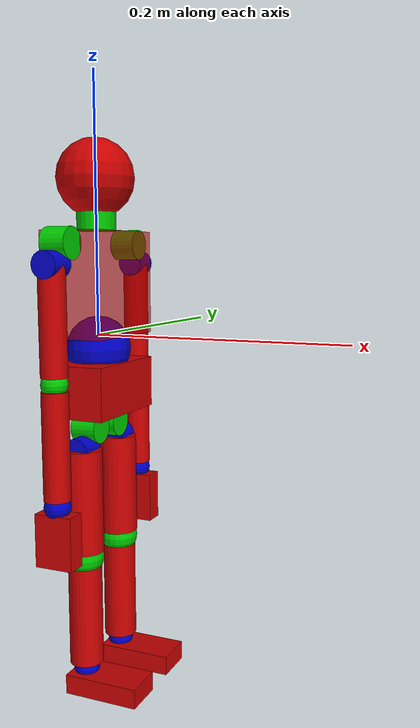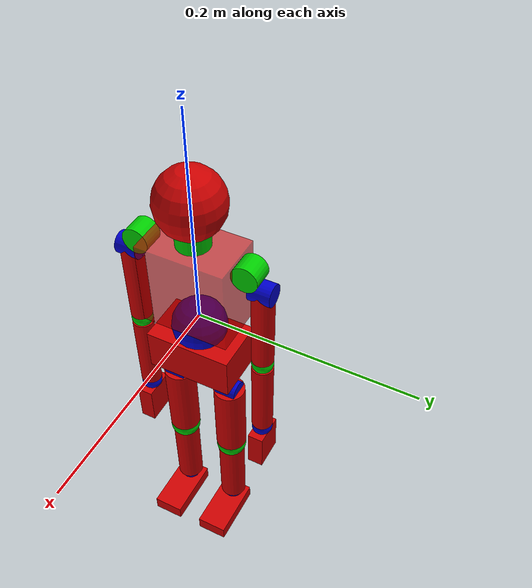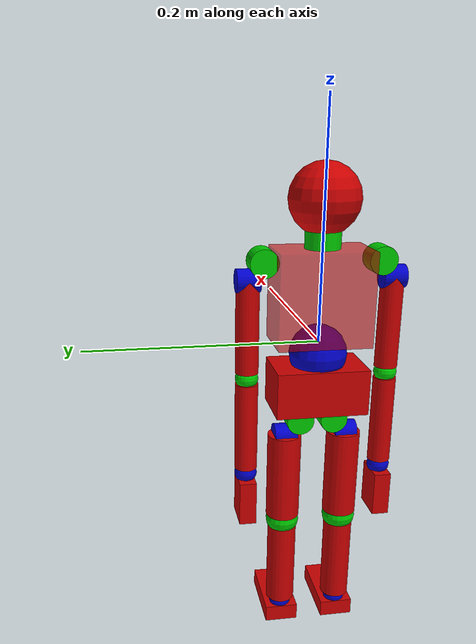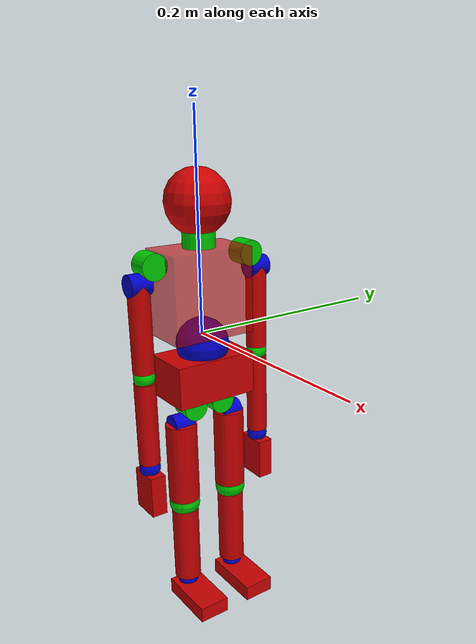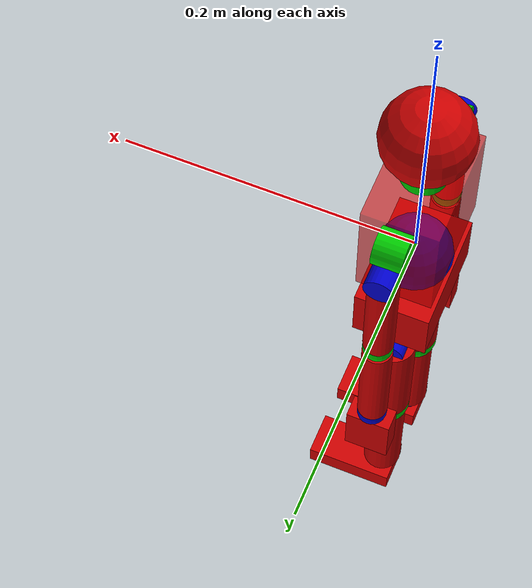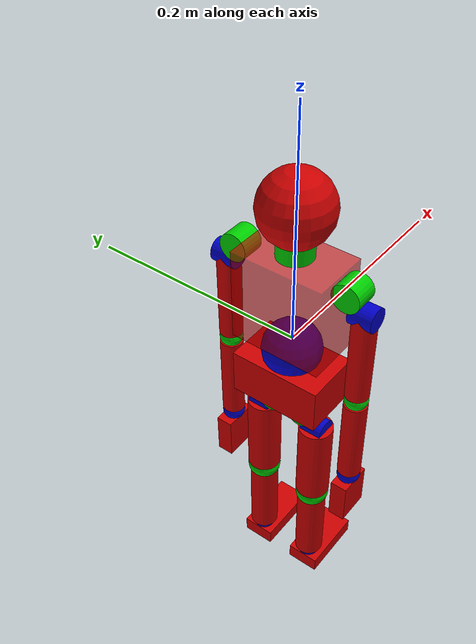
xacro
<?xml version="1.0"?>
<robot xmlns:xacro="http://www.ros.org/wiki/xacro" name="humanbot">

    <!-- define materials -->

    <xacro:macro name="material_visual_red" params="">
        <material name="red">
            <color rgba="0.8 0 0 1"/>
        </material>
    </xacro:macro>

    <xacro:macro name="material_visual_torso_red" params="">
        <material name="torso_red">
            <color rgba="0.8 0 0 0.6"/>
        </material>
    </xacro:macro>

    <xacro:macro name="material_visual_green" params="">
        <material name="green">
            <color rgba="0 0.8 0 1"/>
        </material>
    </xacro:macro>

    <xacro:macro name="material_visual_blue" params="">
        <material name="blue">
            <color rgba="0 0 0.8 1"/>
        </material>
    </xacro:macro>

    <xacro:macro name="material_visual_grey" params="">
        <material name="grey">
            <color rgba="0.7 0.7 0.7 1"/>
        </material>
    </xacro:macro>

    <!-- define properties -->

    <xacro:property name="gazebo_kp" value="1000.0"/>
    <xacro:property name="gazebo_kd" value="1000.0"/>
    <xacro:property name="gazebo_mu1" value="10.0"/>
    <xacro:property name="gazebo_mu2" value="10.0"/>

    <!-- define inertia calculation -->

    <xacro:macro name="cylinder_inertia" params="mass r h">
        <inertia ixx="${(mass / 12.0) * (3*r*r + h*h)}" ixy="0" ixz="0"
                 iyy="${(mass / 12.0) * (3*r*r + h*h)}" iyz="0"
                 izz="${(mass*r*r) / 2.0}" />
    </xacro:macro>

    <xacro:macro name="box_inertia" params="mass x y z">
        <inertia ixx="${mass * (y*y + z*z) / 12.0}" ixy="0" ixz="0"
                 iyy="${mass * (x*x + z*z) / 12.0}" iyz="0"
                 izz="${mass * (x*x + y*y) / 12.0}" />
    </xacro:macro>

    <xacro:macro name="sphere_inertia" params="mass r">
        <inertia ixx="${(2 * mass * r * r / 5.0)}" ixy="0" ixz="0"
                 iyy="${(2 * mass * r * r / 5.0)}" iyz="0"
                 izz="${(2 * mass * r * r / 5.0)}" />
    </xacro:macro>

    <!-- define torso -->

    <xacro:macro name="torso_part" params="">

        <!-- define base_link -->

        <link name="base_link">

            <collision>
                <origin rpy="0 0 0" xyz="0 0 0.005"/>
                <geometry>
                    <box size="0.01 0.01 0.01"/>
                </geometry>
            </collision>

            <visual>
                <origin rpy="0 0 0" xyz="0 0 0.005"/>
                <geometry>
                    <box size="0.01 0.01 0.01"/>
                </geometry>
                <xacro:material_visual_grey />
            </visual>

        </link>

        <!-- define torso_link -->

        <link name="torso_link">

            <inertial>
                <origin rpy="0 0 0" xyz="0 0 0.04"/>
                <mass value="0.04"/>
                <xacro:box_inertia mass="0.04" x="0.05" y="0.08" z="0.08"/>
            </inertial>

            <collision>
                <origin rpy="0 0 0" xyz="0 0 0.04"/>
                <geometry>
                    <box size="0.05 0.08 0.08"/>
                </geometry>
            </collision>

            <visual>
                <origin rpy="0 0 0" xyz="0 0 0.04"/>
                <geometry>
                    <box size="0.05 0.08 0.08"/>
                </geometry>
                <xacro:material_visual_torso_red />
            </visual>

        </link>

        <gazebo reference="torso_link">
            <mu1>${gazebo_mu1}</mu1>
            <mu2>${gazebo_mu2}</mu2>
            <material>Gazebo/Red</material>
        </gazebo>

        <!-- define base_torso_joint -->

        <joint name="base_torso_joint" type="fixed">

            <parent link="base_link"/>
            <child link="torso_link"/>
            <origin xyz="0 0 0" rpy="0 0 0"/>

        </joint>

        <!-- define neck_link -->

        <link name="neck_link">

            <inertial>
                <origin rpy="0 0 0" xyz="0 0 0.0075"/>
                <mass value="0.001"/>
                <xacro:cylinder_inertia mass="0.001" r="0.015" h="0.015"/>
            </inertial>

            <collision>
                <origin rpy="0 0 0" xyz="0 0 0.0075"/>
                <geometry>
                    <cylinder length="0.015" radius="0.015"/>
                </geometry>
            </collision>

            <visual>
                <origin rpy="0 0 0" xyz="0 0 0.0075"/>
                <geometry>
                    <cylinder length="0.015" radius="0.015"/>
                </geometry>
                <xacro:material_visual_green />
            </visual>

        </link>

        <gazebo reference="neck_link">
            <kp>${gazebo_kp}</kp>
            <kd>${gazebo_kd}</kd>
            <mu1>${gazebo_mu1}</mu1>
            <mu2>${gazebo_mu2}</mu2>
            <material>Gazebo/Green</material>
        </gazebo>

        <!-- define torso_neck_joint -->

        <joint name="torso_neck_joint" type="revolute">

            <parent link="torso_link"/>
            <child link="neck_link"/>
            <origin xyz="0 0 0.08" rpy="0 0 0"/>
            <limit lower="-1.5" upper="1.5" effort="1.0" velocity="0.005"/>
            <axis xyz="0 0 1"/>

        </joint>

        <!-- define head_link -->

        <link name="head_link">

            <inertial>
                <origin rpy="0 0 0" xyz="0 0 0"/>
                <mass value="0.01"/>
                <xacro:sphere_inertia mass="0.01" r="0.03"/>
            </inertial>

            <collision>
                <origin rpy="0 0 0" xyz="0 0 0"/>
                <geometry>
                    <sphere radius="0.03"/>
                </geometry>
            </collision>

            <visual>
                <origin rpy="0 0 0" xyz="0 0 0"/>
                <geometry>
                    <sphere radius="0.03"/>
                </geometry>
                <xacro:material_visual_red />
            </visual>

        </link>

        <gazebo reference="head_link">
            <kp>${gazebo_kp}</kp>
            <kd>${gazebo_kd}</kd>
            <mu1>${gazebo_mu1}</mu1>
            <mu2>${gazebo_mu2}</mu2>
            <material>Gazebo/Red</material>
        </gazebo>

        <!-- define neck_head_joint -->

        <joint name="neck_head_joint" type="fixed">

            <parent link="neck_link"/>
            <child link="head_link"/>
            <origin xyz="0 0 0.04" rpy="0 0 0"/>

        </joint>

        <!-- define waist link -->

        <link name="waist_link">

            <inertial>
                <origin rpy="0 0 0" xyz="0 0 0"/>
                <mass value="0.01"/>
                <xacro:sphere_inertia mass="0.01" r="0.025"/>
            </inertial>

            <collision>
                <origin rpy="0 0 0" xyz="0 0 0"/>
                <geometry>
                    <sphere radius="0.025"/>
                </geometry>
            </collision>

            <visual>
                <origin rpy="0 0 0" xyz="0 0 0"/>
                <geometry>
                    <sphere radius="0.025"/>
                </geometry>
                <xacro:material_visual_blue />
            </visual>

        </link>

        <gazebo reference="waist_link">
            <kp>${gazebo_kp}</kp>
            <kd>${gazebo_kd}</kd>
            <mu1>${gazebo_mu1}</mu1>
            <mu2>${gazebo_mu2}</mu2>
            <material>Gazebo/Blue</material>
        </gazebo>

        <!-- define torso_waist_joint -->

        <joint name="torso_waist_joint" type="revolute">

            <parent link="torso_link"/>
            <child link="waist_link"/>
            <origin xyz="0 0 -0.01" rpy="0 0 0"/>
            <limit lower="-1.3" upper="1.3" effort="1.0" velocity="0.005"/>
            <axis xyz="0 0 1"/>

        </joint>

        <!-- define hip_link -->

        <link name="hip_link">

            <inertial>
                <origin rpy="0 0 0" xyz="0 0 -0.03"/>
                <mass value="0.02"/>
                <xacro:box_inertia mass="0.02" x="0.05" y="0.08" z="0.04"/>
            </inertial>

            <collision>
                <origin rpy="0 0 0" xyz="0 0 -0.03"/>
                <geometry>
                    <box size="0.05 0.08 0.04"/>
                </geometry>
            </collision>

            <visual>
                <origin rpy="0 0 0" xyz="0 0 -0.03"/>
                <geometry>
                    <box size="0.05 0.08 0.04"/>
                </geometry>
                <xacro:material_visual_red />
            </visual>

        </link>

        <!-- define waist_hip_joint -->

        <joint name="waist_hip_joint" type="revolute">

            <parent link="waist_link"/>
            <child link="hip_link"/>
            <origin xyz="0 0 0" rpy="0 0 0"/>
            <limit lower="-1.3" upper="0.2" effort="1.0" velocity="0.005"/>
            <axis xyz="0 1 0"/>

        </joint>

    </xacro:macro>

    <!-- define top_arthrosis up part -->

    <xacro:macro name="top_arthrosis_up_part" params="position toparthrosis parentlink *origin">

        <!-- define top_arthrosis_up_link -->

        <link name="${position}_${toparthrosis}_up_link">

            <inertial>
                <origin rpy="0 0 0" xyz="0 0 0"/>
                <mass value="0.003"/>
                <xacro:cylinder_inertia mass="0.003" r="0.012" h="0.02"/>
            </inertial>

            <collision>
                <origin rpy="0 0 0" xyz="0 0 0"/>
                <geometry>
                    <cylinder length="0.02" radius="0.012"/>
                </geometry>
            </collision>

            <visual>
                <origin rpy="0 0 0" xyz="0 0 0"/>
                <geometry>
                    <cylinder length="0.02" radius="0.012"/>
                </geometry>
                <xacro:material_visual_green />
            </visual>

        </link>

        <gazebo reference="${position}_${toparthrosis}_up_link">
            <kp>${gazebo_kp}</kp>
            <kd>${gazebo_kd}</kd>
            <mu1>${gazebo_mu1}</mu1>
            <mu2>${gazebo_mu2}</mu2>
            <material>Gazebo/Green</material>
        </gazebo>

        <!-- define torso_toparthrosis_joint -->

        <joint name="${parentlink}_${position}${toparthrosis}_up_joint" type="revolute">

            <parent link="${parentlink}_link"/>
            <child link="${position}_${toparthrosis}_up_link"/>
            <xacro:insert_block name="origin"/>
            <limit lower="0" upper="1.5" effort="1.0" velocity="0.005"/>
            <axis xyz="0 0 1"/>

        </joint>

    </xacro:macro>

    <!-- define top arthrosis forward part -->

    <xacro:macro name="top_arthrosis_forward_part" params="position toparthrosis lower_limit upper_limit *origin">

        <!-- define top_arthrosis_forward_link -->

        <link name="${position}_${toparthrosis}_forward_link">

            <inertial>
                <origin rpy="0 0 0" xyz="0 0 0"/>
                <mass value="0.002"/>
                <xacro:cylinder_inertia mass="0.002" r="0.01" h="0.02"/>
            </inertial>

            <collision>
                <origin rpy="0 0 0" xyz="0 0 0"/>
                <geometry>
                    <cylinder length="0.02" radius="0.01"/>
                </geometry>
            </collision>

            <visual>
                <origin rpy="0 0 0" xyz="0 0 0"/>
                <geometry>
                    <cylinder length="0.02" radius="0.01"/>
                </geometry>
                <xacro:material_visual_blue />
            </visual>

        </link>

        <gazebo reference="${position}_${toparthrosis}_forward_link">
            <kp>${gazebo_kp}</kp>
            <kd>${gazebo_kd}</kd>
            <mu1>${gazebo_mu1}</mu1>
            <mu2>${gazebo_mu2}</mu2>
            <material>Gazebo/Blue</material>
        </gazebo>

        <!-- define top_arthrosis_up_forwar_joint -->

        <joint name="${position}_${toparthrosis}_up_forwar_joint" type="revolute">

            <parent link="${position}_${toparthrosis}_up_link"/>
            <child link="${position}_${toparthrosis}_forward_link"/>
            <xacro:insert_block name="origin" />
            <limit lower="${lower_limit}" upper="${upper_limit}" effort="1.0" velocity="0.005"/>
            <axis xyz="0 0 1"/>

        </joint>

    </xacro:macro>

    <!-- define upperlimb part -->

    <xacro:macro name="upperlimb_part" params="position toparthrosis limb visual_z limb_mag *origin">

        <!-- define upperlimb_link -->

        <link name="${position}_upper${limb}_link">

            <inertial>
                <origin rpy="0 0 0" xyz="0 0 ${visual_z}"/>
                <mass value="0.008"/>
                <xacro:cylinder_inertia mass="0.008" r="${limb_mag}" h="0.08"/>
            </inertial>

            <collision>
                <origin rpy="0 0 0" xyz="0 0 ${visual_z}"/>
                <geometry>
                    <cylinder length="0.08" radius="${limb_mag}"/>
                </geometry>
            </collision>

            <visual>
                <origin rpy="0 0 0" xyz="0 0 ${visual_z}"/>
                <geometry>
                    <cylinder length="0.08" radius="${limb_mag}"/>
                </geometry>
                <xacro:material_visual_red />
            </visual>

        </link>

        <gazebo reference="${position}_upper${limb}_link">
            <kp>${gazebo_kp}</kp>
            <kd>${gazebo_kd}</kd>
            <mu1>${gazebo_mu1}</mu1>
            <mu2>${gazebo_mu2}</mu2>
            <material>Gazebo/Red</material>
        </gazebo>

        <!-- define toparthrosis_forward_upperlimb_joint -->

        <joint name="${position}_${toparthrosis}forward_upper${limb}_joint" type="revolute">

            <parent link="${position}_${toparthrosis}_forward_link"/>
            <child link="${position}_upper${limb}_link"/>
            <xacro:insert_block name="origin" />
            <limit lower="-1.5" upper="0.5" effort="1.0" velocity="0.005"/>
            <axis xyz="0 0 1"/>

        </joint>

    </xacro:macro>

    <!-- define upper arthrosis part -->

    <xacro:macro name="upper_arthrosis_part" params="position upperarthrosis limb arth_size lower_limit upper_limit *origin">

        <!-- define upper arthrosis link -->

        <link name="${position}_${upperarthrosis}_link">

            <inertial>
                <origin rpy="0 0 0" xyz="0 0 0"/>
                <mass value="0.001"/>
                <xacro:sphere_inertia mass="0.001" r="${arth_size}"/>
            </inertial>

            <collision>
                <origin rpy="0 0 0" xyz="0 0 0"/>
                <geometry>
                    <sphere radius="${arth_size}"/>
                </geometry>
            </collision>

            <visual>
                <origin rpy="0 0 0" xyz="0 0 0"/>
                <geometry>
                    <sphere radius="${arth_size}"/>
                </geometry>
                <xacro:material_visual_green />
            </visual>

        </link>

        <gazebo reference="${position}_${upperarthrosis}_link">
            <kp>${gazebo_kp}</kp>
            <kd>${gazebo_kd}</kd>
            <mu1>${gazebo_mu1}</mu1>
            <mu2>${gazebo_mu2}</mu2>
            <material>Gazebo/Green</material>
        </gazebo>

        <!-- define upperlimb upperarthrosis joint -->

        <joint name="${position}_upper${limb}_${upperarthrosis}_joint" type="revolute">

            <parent link="${position}_upper${limb}_link"/>
            <child link="${position}_${upperarthrosis}_link"/>
            <xacro:insert_block name="origin" />
            <limit lower="${lower_limit}" upper="${upper_limit}" effort="1.0" velocity="0.005"/>
            <axis xyz="1 0 0"/>

        </joint>

    </xacro:macro>

    <!-- define lowerlimb part -->

    <xacro:macro name="lowerlimb_part" params="position arthrosis limb visual_z limb_mag *origin">

        <!-- define lowerlimb link -->

        <link name="${position}_lower${limb}_link">

            <inertial>
                <origin rpy="0 0 0" xyz="0 0 ${visual_z}"/>
                <mass value="0.008"/>
                <xacro:cylinder_inertia mass="0.008" r="${limb_mag}" h="0.08"/>
            </inertial>

            <collision>
                <origin rpy="0 0 0" xyz="0 0 ${visual_z}"/>
                <geometry>
                    <cylinder length="0.08" radius="${limb_mag}"/>
                </geometry>
            </collision>

            <visual>
                <origin rpy="0 0 0" xyz="0 0 ${visual_z}"/>
                <geometry>
                    <cylinder length="0.08" radius="${limb_mag}"/>
                </geometry>
                <xacro:material_visual_red/>
            </visual>

        </link>

        <gazebo reference="${position}_lower${limb}_link">
            <kp>${gazebo_kp}</kp>
            <kd>${gazebo_kd}</kd>
            <mu1>${gazebo_mu1}</mu1>
            <mu2>${gazebo_mu2}</mu2>
            <material>Gazebo/Red</material>
        </gazebo>

        <!-- define arthrosis lowerlimb joint -->

        <joint name="${position}_${arthrosis}_lower${limb}_joint" type="revolute">

            <parent link="${position}_${arthrosis}_link"/>
            <child link="${position}_lower${limb}_link"/>
            <xacro:insert_block name="origin" />
            <limit lower="-0.2" upper="1.57" effort="1.0" velocity="0.005"/>
            <axis xyz="0 0 1"/>

        </joint>

    </xacro:macro>

    <!-- define lower arthrosis part -->

    <xacro:macro name="lower_arthrosis_part" params="position lowerarthrosis limb *origin">

        <!-- define lower arthrosis link -->

        <link name="${position}_${lowerarthrosis}_link">

            <inertial>
                <origin rpy="0 0 0" xyz="0 0 0"/>
                <mass value="0.001"/>
                <xacro:sphere_inertia mass="0.001" r="0.01"/>
            </inertial>

            <collision>
                <origin rpy="0 0 0" xyz="0 0 0"/>
                <geometry>
                    <sphere radius="0.01"/>
                </geometry>
            </collision>

            <visual>
                <origin rpy="0 0 0" xyz="0 0 0"/>
                <geometry>
                    <sphere radius="0.01"/>
                </geometry>
                <xacro:material_visual_blue />
            </visual>

        </link>

        <gazebo reference="${position}_${lowerarthrosis}_link">
            <kp>${gazebo_kp}</kp>
            <kd>${gazebo_kd}</kd>
            <mu1>${gazebo_mu1}</mu1>
            <mu2>${gazebo_mu2}</mu2>
            <material>Gazebo/Blue</material>
        </gazebo>

        <!-- define lowerlimb lowerarthrosis joint -->

        <joint name="${position}_lower${limb}_${lowerarthrosis}_link" type="revolute">

            <parent link="${position}_lower${limb}_link"/>
            <child link="${position}_${lowerarthrosis}_link"/>
            <xacro:insert_block name="origin" />
            <limit lower="-0.5" upper="0.5" effort="1.0" velocity="0.005"/>
            <axis xyz="1 0 0"/>

        </joint>

    </xacro:macro>

    <!-- define hand part -->

    <xacro:macro name="hand_part" params="position lowerarthrosis *origin">

        <!-- define hand_link -->

        <link name="${position}_hand_link">

            <inertial>
                <origin rpy="0 0 0" xyz="0 0 0.015"/>
                <mass value="0.001"/>
                <xacro:box_inertia mass="0.001" x="0.03" y="0.015" z="0.04"/>
            </inertial>

            <collision>
                <origin rpy="0 0 0" xyz="0 0 0.015"/>
                <geometry>
                    <box size="0.03 0.015 0.04"/>
                </geometry>
            </collision>

            <visual>
                <origin rpy="0 0 0" xyz="0 0 0.015"/>
                <geometry>
                    <box size="0.03 0.015 0.04"/>
                </geometry>
                <xacro:material_visual_red />
            </visual>

        </link>

        <gazebo reference="${position}_hand_link">
            <kp>${gazebo_kp}</kp>
            <kd>${gazebo_kd}</kd>
            <mu1>${gazebo_mu1}</mu1>
            <mu2>${gazebo_mu2}</mu2>
            <material>Gazebo/Red</material>
        </gazebo>

        <!-- define lowerarthrosis_hand_joint -->

        <joint name="${position}_${lowerarthrosis}_hand_joint" type="revolute">

            <parent link="${position}_${lowerarthrosis}_link"/>
            <child link="${position}_hand_link"/>
            <xacro:insert_block name="origin" />
            <limit lower="-1.5" upper="1.5" effort="1.0" velocity="0.005"/>
            <axis xyz="1 0 0"/>

        </joint>

    </xacro:macro>

    <!-- define foot_part -->

    <xacro:macro name="foot_part" params="position lowerarthrosis *origin">

        <!-- define foot_link -->

        <link name="${position}_foot_link">

            <inertial>
                <origin rpy="0 0 0" xyz="0 0.02 0"/>
                <mass value="0.0015"/>
                <xacro:box_inertia mass="0.0015" x="0.03" y="0.06" z="0.015"/>
            </inertial>

            <collision>
                <origin rpy="0 0 0" xyz="0 0.02 0"/>
                <geometry>
                    <box size="0.03 0.06 0.015"/>
                </geometry>
            </collision>

            <visual>
                <origin rpy="0 0 0" xyz="0 0.02 0"/>
                <geometry>
                    <box size="0.03 0.06 0.015"/>
                </geometry>
                <xacro:material_visual_red />
            </visual>

        </link>

        <gazebo reference="${position}_foot_link">
            <kp>${gazebo_kp}</kp>
            <kd>${gazebo_kd}</kd>
            <mu1>${gazebo_mu1}</mu1>
            <mu2>${gazebo_mu2}</mu2>
            <material>Gazebo/Red</material>
        </gazebo>

        <!-- define lower arthrosis foot joint -->

        <joint name="${position}_${lowerarthrosis}_foot_joint" type="revolute">
            <parent link="${position}_${lowerarthrosis}_link"/>
            <child link="${position}_foot_link"/>
            <xacro:insert_block name="origin"/>
            <limit lower="-0.4" upper="0.6" effort="1.0" velocity="0.005"/>
            <axis xyz="0 0 1"/>
        </joint>

    </xacro:macro>

    <!-- define left arm -->

    <xacro:macro name="left_arm_part" params="">

        <!-- apply left shoulder up -->
        <xacro:top_arthrosis_up_part position="left" toparthrosis="shoulder" parentlink="torso">
            <origin xyz="0 0.05 0.07" rpy="0 1.57 0"/>
        </xacro:top_arthrosis_up_part>

        <!-- apply left shoulder forward -->
        <xacro:top_arthrosis_forward_part position="left" toparthrosis="shoulder" lower_limit="-1.5" upper_limit="3">
            <origin xyz="0.015 0.012 0" rpy="1.57 0 0"/>
        </xacro:top_arthrosis_forward_part>

        <!-- apply left upperarm -->
        <xacro:upperlimb_part position="left" toparthrosis="shoulder" limb="arm" visual_z="0.04" limb_mag="0.01">
            <origin xyz="0 0 0" rpy="0 1.57 0"/>
        </xacro:upperlimb_part>

        <!-- apply left elbow -->
        <xacro:upper_arthrosis_part position="left" upperarthrosis="elbow" limb="arm" arth_size="0.01" lower_limit="-3" upper_limit="0">
            <origin xyz="0 0 0.085" rpy="0 0 0"/>
        </xacro:upper_arthrosis_part>

        <!-- apply left lowerarm -->
        <xacro:lowerlimb_part position="left" arthrosis="elbow" limb="arm" visual_z="0.04" limb_mag="0.01">
            <origin xyz="0 0 0.005" rpy="0 0 0"/>
        </xacro:lowerlimb_part>

        <!-- apply left wrist -->
        <xacro:lower_arthrosis_part position="left" lowerarthrosis="wrist" limb="arm">
            <origin xyz="0 0 0.085" rpy="0 0 0"/>
        </xacro:lower_arthrosis_part>

        <!-- apply left hand -->
        <xacro:hand_part position="left" lowerarthrosis="wrist">
            <origin xyz="0 0 0.01" rpy="0 0 1.57"/>
        </xacro:hand_part>

    </xacro:macro>

    <!-- define right arm -->

    <xacro:macro name="right_arm_part" params="">

        <!-- apply right shoulder up -->
        <xacro:top_arthrosis_up_part position="right" toparthrosis="shoulder" parentlink="torso">
            <origin xyz="0 -0.05 0.07" rpy="3.14 1.57 0"/>
        </xacro:top_arthrosis_up_part>

        <!-- apply right shoulder forward -->
        <xacro:top_arthrosis_forward_part position="right" toparthrosis="shoulder" lower_limit="-1.5" upper_limit="3">
            <origin xyz="0.015 0.012 0" rpy="-1.57 0 0"/>
        </xacro:top_arthrosis_forward_part>

        <!-- apply right upperarm -->
        <xacro:upperlimb_part position="right" toparthrosis="shoulder" limb="arm" visual_z="-0.04" limb_mag="0.01">
            <origin xyz="0 0 0" rpy="0 -1.57 0"/>
        </xacro:upperlimb_part>

        <!-- apply right elbow -->
        <xacro:upper_arthrosis_part position="right" upperarthrosis="elbow" limb="arm" arth_size="0.01" lower_limit="-3" upper_limit="0">
            <origin xyz="0 0 -0.085" rpy="0 3.14 0"/>
        </xacro:upper_arthrosis_part>

        <!-- apply right lowerarm -->
        <xacro:lowerlimb_part position="right" arthrosis="elbow" limb="arm" visual_z="-0.04" limb_mag="0.01">
            <origin xyz="0 0 0.005" rpy="0 3.14 0"/>
        </xacro:lowerlimb_part>

        <!-- apply right wrist -->
        <xacro:lower_arthrosis_part position="right" lowerarthrosis="wrist" limb="arm">
            <origin xyz="0 0 -0.085" rpy="0 3.14 0"/>
        </xacro:lower_arthrosis_part>

        <!-- apply right hand -->
        <xacro:hand_part position="right" lowerarthrosis="wrist">
            <origin xyz="0 0 0.01" rpy="0 0 -1.57"/>
        </xacro:hand_part>

    </xacro:macro>

    <!-- define left leg -->

    <xacro:macro name="left_leg_part" params="">

        <!-- apply left hipball up -->
        <xacro:top_arthrosis_up_part position="left" toparthrosis="hipball" parentlink="hip">
            <origin xyz="0 0.015 -0.06" rpy="0 1.57 0"/>
        </xacro:top_arthrosis_up_part>

        <!-- apply left hipball forward -->
        <xacro:top_arthrosis_forward_part position="left" toparthrosis="hipball" lower_limit="0" upper_limit="2">
            <origin xyz="0.015 0.012 0" rpy="1.57 0 0"/>
        </xacro:top_arthrosis_forward_part>

        <!-- apply left upperleg -->
        <xacro:upperlimb_part position="left" toparthrosis="hipball" limb="leg" visual_z="0.04" limb_mag="0.015">
            <origin xyz="0 0 0" rpy="0 1.57 0"/>
        </xacro:upperlimb_part>

        <!-- apply left knee -->
        <xacro:upper_arthrosis_part position="left" upperarthrosis="knee" limb="leg" arth_size="0.015" lower_limit="0" upper_limit="3">
            <origin xyz="0 0 0.085" rpy="0 0 0"/>
        </xacro:upper_arthrosis_part>

        <!-- apply left lowerleg -->
        <xacro:lowerlimb_part position="left" arthrosis="knee" limb="leg" visual_z="0.04" limb_mag="0.013">
            <origin xyz="0 0 0.005" rpy="0 0 0"/>
        </xacro:lowerlimb_part>

        <!-- apply left ankle -->
        <xacro:lower_arthrosis_part position="left" lowerarthrosis="ankle" limb="leg">
            <origin xyz="0 0 0.085" rpy="0 0 0"/>
        </xacro:lower_arthrosis_part>

        <!-- define left foot -->
        <xacro:foot_part position="left" lowerarthrosis="ankle">
            <origin xyz="0 0 0.01" rpy="0 0 0"/>
        </xacro:foot_part>

    </xacro:macro>

    <!-- define right leg -->

    <xacro:macro name="right_leg_part" params="">

        <!-- apply right hipball up -->
        <xacro:top_arthrosis_up_part position="right" toparthrosis="hipball" parentlink="hip">
            <origin xyz="0 -0.015 -0.06" rpy="3.14 1.57 0"/>
        </xacro:top_arthrosis_up_part>

        <!-- apply right hipball forward -->
        <xacro:top_arthrosis_forward_part position="right" toparthrosis="hipball" lower_limit="0" upper_limit="2">
            <origin xyz="0.015 0.012 0" rpy="-1.57 0 0"/>
        </xacro:top_arthrosis_forward_part>

        <!-- apply right upperleg -->
        <xacro:upperlimb_part position="right" toparthrosis="hipball" limb="leg" visual_z="-0.04" limb_mag="0.015">
            <origin xyz="0 0 0" rpy="0 -1.57 0"/>
        </xacro:upperlimb_part>

        <!-- apply right knee -->
        <xacro:upper_arthrosis_part position="right" upperarthrosis="knee" limb="leg" arth_size="0.015" lower_limit="0" upper_limit="3">
            <origin xyz="0 0 -0.085" rpy="0 3.14 0"/>
        </xacro:upper_arthrosis_part>

        <!-- apply right lowerleg -->
        <xacro:lowerlimb_part position="right" arthrosis="knee" limb="leg" visual_z="-0.04" limb_mag="0.013">
            <origin xyz="0 0 0.005" rpy="0 3.14 0"/>
        </xacro:lowerlimb_part>

        <!-- apply right ankle -->
        <xacro:lower_arthrosis_part position="right" lowerarthrosis="ankle" limb="leg">
            <origin xyz="0 0 -0.085" rpy="0 3.14 0"/>
        </xacro:lower_arthrosis_part>

        <!-- define right foot -->
        <xacro:foot_part position="right" lowerarthrosis="ankle">
            <origin xyz="0 0 0.01" rpy="0 3.14 0"/>
        </xacro:foot_part>

    </xacro:macro>

    <!-- define whole body -->

    <xacro:macro name="whole_humanbot" params="">

        <!-- apply torso -->
        <xacro:torso_part />

        <!-- apply left arm -->
        <xacro:left_arm_part />

        <!-- apply right arm -->
        <xacro:right_arm_part />

        <!-- apply left_leg_part -->
        <xacro:left_leg_part />

        <!-- apply right_leg_part -->
        <xacro:right_leg_part />

    </xacro:macro>

    <!-- apply whole body -->

    <xacro:whole_humanbot />

</robot>
